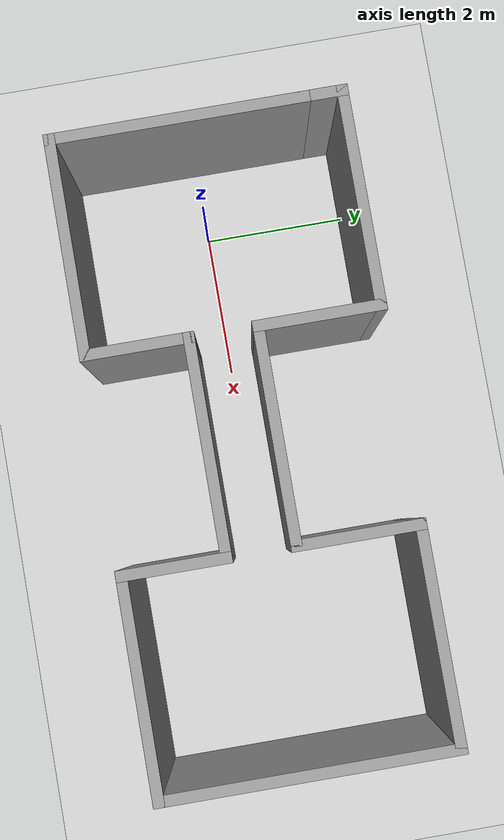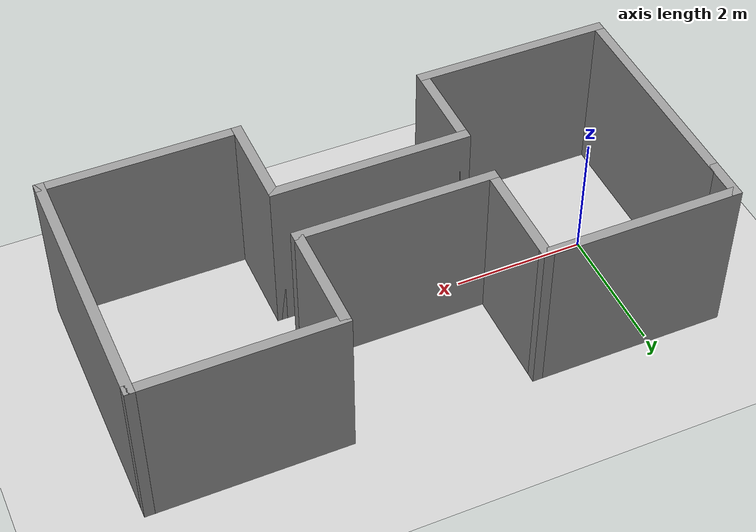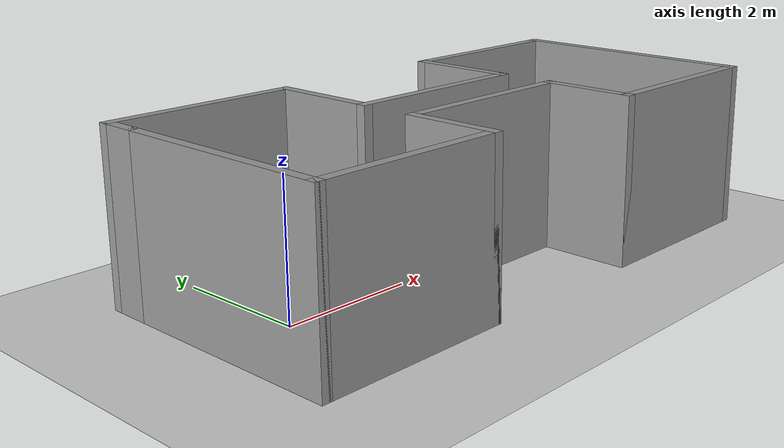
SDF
<sdf version="1.7">
 <world name="default">
  <light name="sun" type="directional">
   <pose>0 0 10 0 -0 0</pose>
   <diffuse>0.8 0.8 0.8 1</diffuse>
   <specular>0.2 0.2 0.2 1</specular>
   <attenuation>
    <range>1000</range>
    <constant>0.9</constant>
    <linear>0.01</linear>
    <quadratic>0.001</quadratic>
   </attenuation>
   <direction>-0.5 0.1 -0.9</direction>
   <spot><inner_angle>0</inner_angle><outer_angle>0</outer_angle><falloff>0</falloff></spot>
  </light>
  <model name="ground_plane">
   <static>1</static>
   <link name="link">
    <collision name="collision">
     <geometry><plane><normal>0 0 1</normal><size>100 100</size></plane></geometry>
     <surface>
      <contact><collide_bitmask>65535</collide_bitmask></contact>
      <friction><ode><mu>100</mu><mu2>50</mu2></ode></friction>
     </surface>
    </collision>
    <visual name="visual">
     <cast_shadows>0</cast_shadows>
     <geometry><plane><normal>0 0 1</normal><size>100 100</size></plane></geometry>
     <material>
      <script><uri>file://media/materials/scripts/gazebo.material</uri><name>Gazebo/Grey</name></script>
     </material>
    </visual>
   </link>
  </model>
  <gravity>0 0 -9.8</gravity>
  <magnetic_field>6e-06 2.3e-05 -4.2e-05</magnetic_field>
  <atmosphere type="adiabatic"/>
  <physics type="ode">
   <max_step_size>0.001</max_step_size>
   <real_time_factor>1</real_time_factor>
   <real_time_update_rate>1000</real_time_update_rate>
  </physics>
  <scene><ambient>0.4 0.4 0.4 1</ambient><background>0.7 0.7 0.7 1</background><shadows>1</shadows></scene>
  <spherical_coordinates>
   <surface_model>EARTH_WGS84</surface_model>
   <latitude_deg>0</latitude_deg>
   <longitude_deg>0</longitude_deg>
   <elevation>0</elevation>
   <heading_deg>0</heading_deg>
  </spherical_coordinates>
  <model name="tunell">
   <pose>3.19593 -0.993639 0 0 -0 0</pose>
   <link name="Wall_20">
    <collision name="Wall_20_Collision">
     <geometry><box><size>3.5 0.15 2.5</size></box></geometry>
     <pose>0 0 1.25 0 -0 0</pose>
    </collision>
    <visual name="Wall_20_Visual">
     <pose>0 0 1.25 0 -0 0</pose>
     <geometry><box><size>3.5 0.15 2.5</size></box></geometry>
     <material>
      <script><uri>file://media/materials/scripts/gazebo.material</uri><name>Gazebo/Grey</name></script>
      <ambient>1 1 1 1</ambient>
     </material>
     <meta><layer>0</layer></meta>
    </visual>
    <pose>-4.275 0.847093 0 0 -0 -1.5708</pose>
   </link>
   <link name="Wall_21">
    <collision name="Wall_21_Collision">
     <geometry><box><size>3 0.15 2.5</size></box></geometry>
     <pose>0 0 1.25 0 -0 0</pose>
    </collision>
    <visual name="Wall_21_Visual">
     <pose>0 0 1.25 0 -0 0</pose>
     <geometry><box><size>3 0.15 2.5</size></box></geometry>
     <material>
      <script><uri>file://media/materials/scripts/gazebo.material</uri><name>Gazebo/Grey</name></script>
      <ambient>1 1 1 1</ambient>
     </material>
     <meta><layer>0</layer></meta>
    </visual>
    <pose>-2.85 -0.827907 0 0 -0 0</pose>
   </link>
   <link name="Wall_22">
    <collision name="Wall_22_Collision">
     <geometry><box><size>1.5 0.15 2.5</size></box></geometry>
     <pose>0 0 1.25 0 -0 0</pose>
    </collision>
    <visual name="Wall_22_Visual">
     <pose>0 0 1.25 0 -0 0</pose>
     <geometry><box><size>1.5 0.15 2.5</size></box></geometry>
     <material>
      <script><uri>file://media/materials/scripts/gazebo.material</uri><name>Gazebo/Grey</name></script>
      <ambient>1 1 1 1</ambient>
     </material>
     <meta><layer>0</layer></meta>
    </visual>
    <pose>-1.425 -0.152907 0 0 -0 1.5708</pose>
   </link>
   <link name="Wall_23">
    <collision name="Wall_23_Collision">
     <geometry><box><size>3 0.15 2.5</size></box></geometry>
     <pose>0 0 1.25 0 -0 0</pose>
    </collision>
    <visual name="Wall_23_Visual">
     <pose>0 0 1.25 0 -0 0</pose>
     <geometry><box><size>3 0.15 2.5</size></box></geometry>
     <material>
      <script><uri>file://media/materials/scripts/gazebo.material</uri><name>Gazebo/Grey</name></script>
      <ambient>1 1 1 1</ambient>
     </material>
     <meta><layer>0</layer></meta>
    </visual>
    <pose>-0 0.522093 0 0 -0 0</pose>
   </link>
   <link name="Wall_24">
    <collision name="Wall_24_Collision">
     <geometry><box><size>1.5 0.15 2.5</size></box></geometry>
     <pose>0 0 1.25 0 -0 0</pose>
    </collision>
    <visual name="Wall_24_Visual">
     <pose>0 0 1.25 0 -0 0</pose>
     <geometry><box><size>1.5 0.15 2.5</size></box></geometry>
     <material>
      <script><uri>file://media/materials/scripts/gazebo.material</uri><name>Gazebo/Grey</name></script>
      <ambient>1 1 1 1</ambient>
     </material>
     <meta><layer>0</layer></meta>
    </visual>
    <pose>1.425 -0.152907 0 0 -0 -1.5708</pose>
   </link>
   <link name="Wall_25">
    <collision name="Wall_25_Collision">
     <geometry><box><size>3 0.15 2.5</size></box></geometry>
     <pose>0 0 1.25 0 -0 0</pose>
    </collision>
    <visual name="Wall_25_Visual">
     <pose>0 0 1.25 0 -0 0</pose>
     <geometry><box><size>3 0.15 2.5</size></box></geometry>
     <material>
      <script><uri>file://media/materials/scripts/gazebo.material</uri><name>Gazebo/Grey</name></script>
      <ambient>1 1 1 1</ambient>
     </material>
     <meta><layer>0</layer></meta>
    </visual>
    <pose>2.85 -0.827907 0 0 -0 0</pose>
   </link>
   <link name="Wall_26">
    <collision name="Wall_26_Collision">
     <geometry><box><size>4 0.15 2.5</size></box></geometry>
     <pose>0 0 1.25 0 -0 0</pose>
    </collision>
    <visual name="Wall_26_Visual">
     <pose>0 0 1.25 0 -0 0</pose>
     <geometry><box><size>4 0.15 2.5</size></box></geometry>
     <material>
      <script><uri>file://media/materials/scripts/gazebo.material</uri><name>Gazebo/Grey</name></script>
      <ambient>1 1 1 1</ambient>
     </material>
     <meta><layer>0</layer></meta>
    </visual>
    <pose>4.275 1.09709 0 0 -0 1.5708</pose>
   </link>
   <link name="Wall_27">
    <collision name="Wall_27_Collision">
     <geometry><box><size>3 0.15 2.5</size></box></geometry>
     <pose>0 0 1.25 0 -0 0</pose>
    </collision>
    <visual name="Wall_27_Visual">
     <pose>0 0 1.25 0 -0 0</pose>
     <geometry><box><size>3 0.15 2.5</size></box></geometry>
     <material>
      <script><uri>file://media/materials/scripts/gazebo.material</uri><name>Gazebo/Grey</name></script>
      <ambient>1 1 1 1</ambient>
     </material>
     <meta><layer>0</layer></meta>
    </visual>
    <pose>2.85 3.02209 0 0 -0 3.14159</pose>
   </link>
   <link name="Wall_28">
    <collision name="Wall_28_Collision">
     <geometry><box><size>1.75 0.15 2.5</size></box></geometry>
     <pose>0 0 1.25 0 -0 0</pose>
    </collision>
    <visual name="Wall_28_Visual">
     <pose>0 0 1.25 0 -0 0</pose>
     <geometry><box><size>1.75 0.15 2.5</size></box></geometry>
     <material>
      <script><uri>file://media/materials/scripts/gazebo.material</uri><name>Gazebo/Grey</name></script>
      <ambient>1 1 1 1</ambient>
     </material>
     <meta><layer>0</layer></meta>
    </visual>
    <pose>1.425 2.22209 0 0 -0 -1.5708</pose>
   </link>
   <link name="Wall_29">
    <collision name="Wall_29_Collision">
     <geometry><box><size>3 0.15 2.5</size></box></geometry>
     <pose>0 0 1.25 0 -0 0</pose>
    </collision>
    <visual name="Wall_29_Visual">
     <pose>0 0 1.25 0 -0 0</pose>
     <geometry><box><size>3 0.15 2.5</size></box></geometry>
     <material>
      <script><uri>file://media/materials/scripts/gazebo.material</uri><name>Gazebo/Grey</name></script>
      <ambient>1 1 1 1</ambient>
     </material>
     <meta><layer>0</layer></meta>
    </visual>
    <pose>-0 1.42209 0 0 -0 3.14159</pose>
   </link>
   <link name="Wall_30">
    <collision name="Wall_30_Collision">
     <geometry><box><size>1.75 0.15 2.5</size></box></geometry>
     <pose>0 0 1.25 0 -0 0</pose>
    </collision>
    <visual name="Wall_30_Visual">
     <pose>0 0 1.25 0 -0 0</pose>
     <geometry><box><size>1.75 0.15 2.5</size></box></geometry>
     <material>
      <script><uri>file://media/materials/scripts/gazebo.material</uri><name>Gazebo/Grey</name></script>
      <ambient>1 1 1 1</ambient>
     </material>
     <meta><layer>0</layer></meta>
    </visual>
    <pose>-1.425 2.22209 0 0 -0 1.5708</pose>
   </link>
   <link name="Wall_31">
    <collision name="Wall_31_Collision">
     <geometry><box><size>3 0.15 2.5</size></box></geometry>
     <pose>0 0 1.25 0 -0 0</pose>
    </collision>
    <visual name="Wall_31_Visual">
     <pose>0 0 1.25 0 -0 0</pose>
     <geometry><box><size>3 0.15 2.5</size></box></geometry>
     <material>
      <script><uri>file://media/materials/scripts/gazebo.material</uri><name>Gazebo/Grey</name></script>
      <ambient>1 1 1 1</ambient>
     </material>
     <meta><layer>0</layer></meta>
    </visual>
    <pose>-2.85 3.02209 0 0 -0 3.14159</pose>
   </link>
   <link name="Wall_32">
    <collision name="Wall_32_Collision">
     <geometry><box><size>0.65 0.15 2.5</size></box></geometry>
     <pose>0 0 1.25 0 -0 0</pose>
    </collision>
    <visual name="Wall_32_Visual">
     <pose>0 0 1.25 0 -0 0</pose>
     <geometry><box><size>0.65 0.15 2.5</size></box></geometry>
     <material>
      <script><uri>file://media/materials/scripts/gazebo.material</uri><name>Gazebo/Grey</name></script>
      <ambient>1 1 1 1</ambient>
     </material>
     <meta><layer>0</layer></meta>
    </visual>
    <pose>-4.275 2.77209 0 0 -0 -1.5708</pose>
   </link>
   <static>1</static>
  </model>
 </world>
</sdf>
